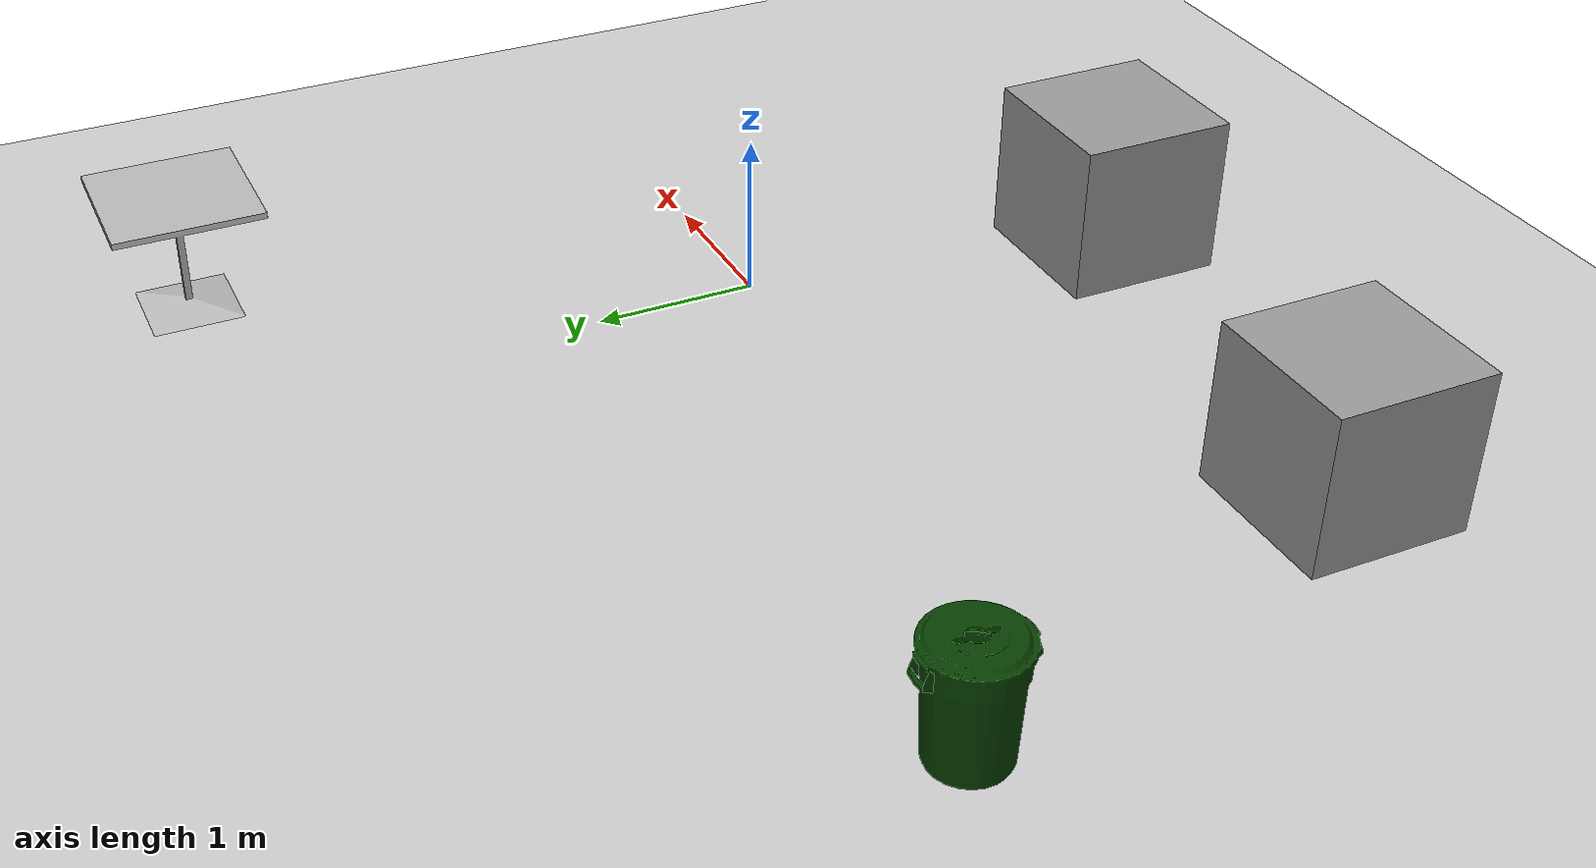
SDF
<sdf version="1.7">
 <world name="default">
  <light name="sun" type="directional">
   <pose>0 0 10 0 -0 0</pose>
   <diffuse>0.8 0.8 0.8 1</diffuse>
   <specular>0.2 0.2 0.2 1</specular>
   <attenuation>
    <range>1000</range>
    <constant>0.9</constant>
    <linear>0.01</linear>
    <quadratic>0.001</quadratic>
   </attenuation>
   <direction>-0.5 0.1 -0.9</direction>
   <spot><inner_angle>0</inner_angle><outer_angle>0</outer_angle><falloff>0</falloff></spot>
  </light>
  <model name="ground_plane">
   <static>1</static>
   <link name="link">
    <collision name="collision">
     <geometry><plane><normal>0 0 1</normal><size>100 100</size></plane></geometry>
     <surface>
      <contact><collide_bitmask>65535</collide_bitmask></contact>
      <friction><ode><mu>100</mu><mu2>50</mu2></ode></friction>
     </surface>
    </collision>
    <visual name="visual">
     <cast_shadows>0</cast_shadows>
     <geometry><plane><normal>0 0 1</normal><size>100 100</size></plane></geometry>
     <material>
      <script><uri>file://media/materials/scripts/gazebo.material</uri><name>Gazebo/Grey</name></script>
     </material>
    </visual>
   </link>
  </model>
  <gravity>0 0 -9.8</gravity>
  <magnetic_field>6e-06 2.3e-05 -4.2e-05</magnetic_field>
  <atmosphere type="adiabatic"/>
  <physics type="ode">
   <max_step_size>0.001</max_step_size>
   <real_time_factor>1</real_time_factor>
   <real_time_update_rate>1000</real_time_update_rate>
  </physics>
  <scene><ambient>0.4 0.4 0.4 1</ambient><background>0.7 0.7 0.7 1</background><shadows>1</shadows></scene>
  <spherical_coordinates>
   <surface_model>EARTH_WGS84</surface_model>
   <latitude_deg>0</latitude_deg>
   <longitude_deg>0</longitude_deg>
   <elevation>0</elevation>
   <heading_deg>0</heading_deg>
  </spherical_coordinates>
  <model name="first_2015_trash_can">
   <link name="link">
    <inertial>
     <pose>0 0 0.3683 0 -0 0</pose>
     <mass>4.83076</mass>
     <inertia>
      <ixx>0.281534</ixx>
      <ixy>0</ixy>
      <ixz>0</ixz>
      <iyy>0.281534</iyy>
      <iyz>0</iyz>
      <izz>0.126223</izz>
     </inertia>
    </inertial>
    <visual name="visual">
     <geometry><mesh><uri>model://first_2015_trash_can/meshes/trash_can.dae</uri></mesh></geometry>
    </visual>
    <collision name="collision">
     <geometry><mesh><uri>model://first_2015_trash_can/meshes/trash_can.dae</uri></mesh></geometry>
    </collision>
   </link>
   <pose>-4.2332 0.862872 -4e-06 -0 4e-06 -0.000612</pose>
  </model>
  <model name="cafe_table">
   <static>1</static>
   <link name="link">
    <collision name="surface">
     <pose>0 0 0.755 0 -0 0</pose>
     <geometry><box><size>0.913 0.913 0.04</size></box></geometry>
    </collision>
    <collision name="column">
     <pose>0 0 0.37 0 -0 0</pose>
     <geometry><box><size>0.042 0.042 0.74</size></box></geometry>
    </collision>
    <collision name="base">
     <pose>0 0 0.02 0 -0 0</pose>
     <geometry><box><size>0.56 0.56 0.04</size></box></geometry>
    </collision>
    <visual name="visual">
     <geometry><mesh><uri>model://cafe_table/meshes/cafe_table.dae</uri></mesh></geometry>
    </visual>
   </link>
   <pose>1.24872 3.23586 0 0 -0 0</pose>
  </model>
  <model name="unit_box">
   <pose>-3.33871 -1.89806 0.499995 -1e-05 -0 0</pose>
   <link name="link">
    <inertial>
     <mass>1</mass>
     <inertia>
      <ixx>0.166667</ixx>
      <ixy>0</ixy>
      <ixz>0</ixz>
      <iyy>0.166667</iyy>
      <iyz>0</iyz>
      <izz>0.166667</izz>
     </inertia>
    </inertial>
    <collision name="collision"><geometry><box><size>1 1 1</size></box></geometry></collision>
    <visual name="visual">
     <geometry><box><size>1 1 1</size></box></geometry>
     <material>
      <script><name>Gazebo/Grey</name><uri>file://media/materials/scripts/gazebo.material</uri></script>
     </material>
    </visual>
   </link>
  </model>
  <model name="unit_box_0">
   <pose>-0.472901 -2.27769 0.5 0 -0 0</pose>
   <link name="link">
    <inertial>
     <mass>1</mass>
     <inertia>
      <ixx>0.166667</ixx>
      <ixy>0</ixy>
      <ixz>0</ixz>
      <iyy>0.166667</iyy>
      <iyz>0</iyz>
      <izz>0.166667</izz>
     </inertia>
    </inertial>
    <collision name="collision"><geometry><box><size>1 1 1</size></box></geometry></collision>
    <visual name="visual">
     <geometry><box><size>1 1 1</size></box></geometry>
     <material>
      <script><name>Gazebo/Grey</name><uri>file://media/materials/scripts/gazebo.material</uri></script>
     </material>
    </visual>
   </link>
  </model>
 </world>
</sdf>
